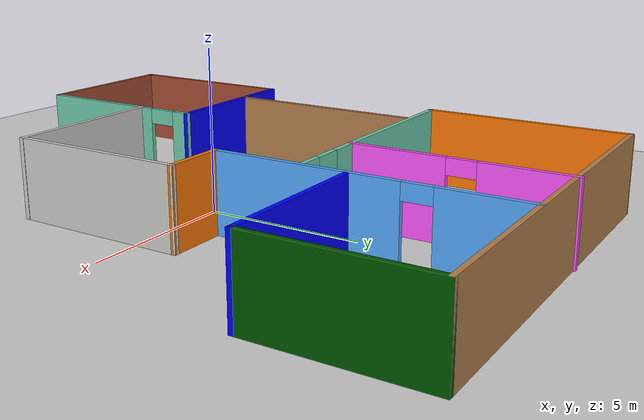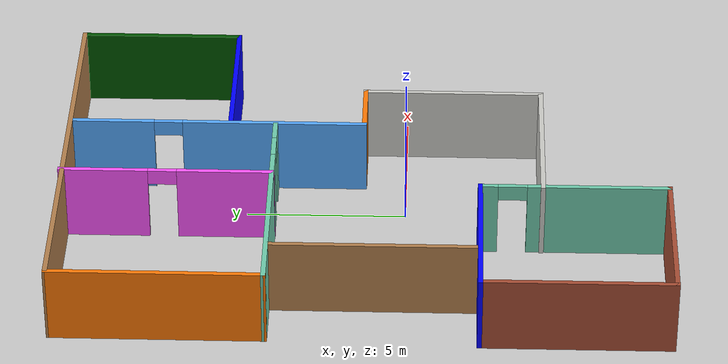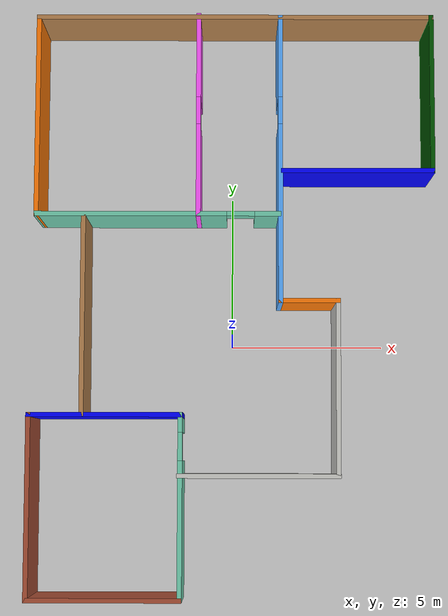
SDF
<sdf version="1.6">
 <world name="default">
  <light name="sun" type="directional">
   <pose>0 0 10 0 -0 0</pose>
   <diffuse>0.8 0.8 0.8 1</diffuse>
   <specular>0.2 0.2 0.2 1</specular>
   <attenuation>
    <range>1000</range>
    <constant>0.9</constant>
    <linear>0.01</linear>
    <quadratic>0.001</quadratic>
   </attenuation>
   <direction>-0.5 0.1 -0.9</direction>
  </light>
  <model name="ground_plane">
   <static>1</static>
   <link name="link">
    <collision name="collision">
     <geometry><plane><normal>0 0 1</normal><size>100 100</size></plane></geometry>
     <surface><friction><ode><mu>100</mu><mu2>50</mu2></ode></friction></surface>
    </collision>
    <visual name="visual">
     <cast_shadows>0</cast_shadows>
     <geometry><plane><normal>0 0 1</normal><size>100 100</size></plane></geometry>
     <material>
      <script><uri>file://media/materials/scripts/gazebo.material</uri><name>Gazebo/Grey</name></script>
     </material>
    </visual>
   </link>
  </model>
  <gravity>0 0 -9.8</gravity>
  <magnetic_field>6e-06 2.3e-05 -4.2e-05</magnetic_field>
  <atmosphere type="adiabatic"/>
  <physics name="default_physics" default="0" type="ode">
   <max_step_size>0.001</max_step_size>
   <real_time_factor>1</real_time_factor>
   <real_time_update_rate>1000</real_time_update_rate>
  </physics>
  <scene><ambient>0.4 0.4 0.4 1</ambient><background>0.7 0.7 0.7 1</background><shadows>1</shadows></scene>
  <spherical_coordinates>
   <surface_model>EARTH_WGS84</surface_model>
   <latitude_deg>0</latitude_deg>
   <longitude_deg>0</longitude_deg>
   <elevation>0</elevation>
   <heading_deg>0</heading_deg>
  </spherical_coordinates>
  <model name="new_building">
   <pose>-0.01155 1.28324 0 0 -0 0</pose>
   <link name="Wall_0">
    <collision name="Wall_0_Collision">
     <geometry><box><size>13 0.15 2.5</size></box></geometry>
     <pose>0 0 1.25 0 -0 0</pose>
    </collision>
    <visual name="Wall_0_Visual">
     <pose>0 0 1.25 0 -0 0</pose>
     <geometry><box><size>13 0.15 2.5</size></box></geometry>
     <material>
      <script><uri>file://media/materials/scripts/gazebo.material</uri><name>Gazebo/Wood</name></script>
      <ambient>1 1 1 1</ambient>
     </material>
     <meta><layer>0</layer></meta>
    </visual>
    <pose>0.081318 9.40266 0 0 -0 0</pose>
   </link>
   <link name="Wall_1">
    <collision name="Wall_1_Collision">
     <geometry><box><size>5.25 0.15 2.5</size></box></geometry>
     <pose>0 0 1.25 0 -0 0</pose>
    </collision>
    <visual name="Wall_1_Visual">
     <pose>0 0 1.25 0 -0 0</pose>
     <geometry><box><size>5.25 0.15 2.5</size></box></geometry>
     <material>
      <script><uri>file://media/materials/scripts/gazebo.material</uri><name>Gazebo/Grey</name></script>
      <ambient>0 0.333333 0 1</ambient>
     </material>
     <meta><layer>0</layer></meta>
    </visual>
    <pose>6.50632 6.85266 0 0 0 -1.5708</pose>
   </link>
   <link name="Wall_14">
    <collision name="Wall_14_Collision">
     <geometry><box><size>6 0.15 2.5</size></box></geometry>
     <pose>0 0 1.25 0 -0 0</pose>
    </collision>
    <visual name="Wall_14_Visual">
     <pose>0 0 1.25 0 -0 0</pose>
     <geometry><box><size>6 0.15 2.5</size></box></geometry>
     <material>
      <script><uri>file://media/materials/scripts/gazebo.material</uri><name>Gazebo/Bricks</name></script>
      <ambient>1 1 1 1</ambient>
     </material>
     <meta><layer>0</layer></meta>
    </visual>
    <pose>-6.50632 -6.54004 0 0 0 -1.5708</pose>
   </link>
   <link name="Wall_15">
    <collision name="Wall_15_Collision">
     <geometry><box><size>5 0.15 2.5</size></box></geometry>
     <pose>0 0 1.25 0 -0 0</pose>
    </collision>
    <visual name="Wall_15_Visual">
     <pose>0 0 1.25 0 -0 0</pose>
     <geometry><box><size>5 0.15 2.5</size></box></geometry>
     <material>
      <script><uri>file://media/materials/scripts/gazebo.material</uri><name>Gazebo/Bricks</name></script>
      <ambient>1 1 1 1</ambient>
     </material>
     <meta><layer>0</layer></meta>
    </visual>
    <pose>-4.08132 -9.46504 0 0 -0 0</pose>
   </link>
   <link name="Wall_16">
    <pose>-1.65632 -6.54004 0 0 -0 1.5708</pose>
    <visual name="Wall_16_Visual_0">
     <pose>-0.764135 0 1.25 0 -0 0</pose>
     <geometry><box><size>4.47173 0.15 2.5</size></box></geometry>
     <material>
      <script><uri>file://media/materials/scripts/gazebo.material</uri><name>Gazebo/Grey</name></script>
      <ambient>0.435294 0.796078 0.67451 1</ambient>
     </material>
     <meta><layer>0</layer></meta>
    </visual>
    <collision name="Wall_16_Collision_0">
     <geometry><box><size>4.47173 0.15 2.5</size></box></geometry>
     <pose>-0.764135 0 1.25 0 -0 0</pose>
    </collision>
    <visual name="Wall_16_Visual_1">
     <pose>2.68587 0 1.25 0 -0 0</pose>
     <geometry><box><size>0.628271 0.15 2.5</size></box></geometry>
     <material>
      <script><uri>file://media/materials/scripts/gazebo.material</uri><name>Gazebo/Grey</name></script>
      <ambient>0.435294 0.796078 0.67451 1</ambient>
     </material>
     <meta><layer>0</layer></meta>
    </visual>
    <collision name="Wall_16_Collision_1">
     <geometry><box><size>0.628271 0.15 2.5</size></box></geometry>
     <pose>2.68587 0 1.25 0 -0 0</pose>
    </collision>
    <visual name="Wall_16_Visual_2">
     <pose>1.92173 0 2.25 0 -0 0</pose>
     <geometry><box><size>0.9 0.15 0.5</size></box></geometry>
     <material>
      <script><uri>file://media/materials/scripts/gazebo.material</uri><name>Gazebo/Grey</name></script>
      <ambient>0.435294 0.796078 0.67451 1</ambient>
     </material>
     <meta><layer>0</layer></meta>
    </visual>
    <collision name="Wall_16_Collision_2">
     <geometry><box><size>0.9 0.15 0.5</size></box></geometry>
     <pose>1.92173 0 2.25 0 -0 0</pose>
    </collision>
   </link>
   <link name="Wall_18">
    <collision name="Wall_18_Collision">
     <geometry><box><size>5 0.15 2.5</size></box></geometry>
     <pose>0 0 1.25 0 -0 0</pose>
    </collision>
    <visual name="Wall_18_Visual">
     <pose>0 0 1.25 0 -0 0</pose>
     <geometry><box><size>5 0.15 2.5</size></box></geometry>
     <material>
      <script><uri>file://media/materials/scripts/gazebo.material</uri><name>Gazebo/Grey</name></script>
      <ambient>0 0 1 1</ambient>
     </material>
     <meta><layer>0</layer></meta>
    </visual>
    <pose>-4.08132 -3.61504 0 0 -0 0</pose>
   </link>
   <link name="Wall_2">
    <collision name="Wall_2_Collision">
     <geometry><box><size>5 0.15 2.5</size></box></geometry>
     <pose>0 0 1.25 0 -0 0</pose>
    </collision>
    <visual name="Wall_2_Visual">
     <pose>0 0 1.25 0 -0 0</pose>
     <geometry><box><size>5 0.15 2.5</size></box></geometry>
     <material>
      <script><uri>file://media/materials/scripts/gazebo.material</uri><name>Gazebo/Grey</name></script>
      <ambient>0 0 1 1</ambient>
     </material>
     <meta><layer>0</layer></meta>
    </visual>
    <pose>4.08132 4.30266 0 0 -0 3.14159</pose>
   </link>
   <link name="Wall_20">
    <collision name="Wall_20_Collision">
     <geometry><box><size>6.5 0.15 2.5</size></box></geometry>
     <pose>0 0 1.25 0 -0 0</pose>
    </collision>
    <visual name="Wall_20_Visual">
     <pose>0 0 1.25 0 -0 0</pose>
     <geometry><box><size>6.5 0.15 2.5</size></box></geometry>
     <material>
      <script><uri>file://media/materials/scripts/gazebo.material</uri><name>Gazebo/Wood</name></script>
      <ambient>1 1 1 1</ambient>
     </material>
     <meta><layer>0</layer></meta>
    </visual>
    <pose>-4.81839 -0.424532 0 0 -0 1.5708</pose>
   </link>
   <link name="Wall_22">
    <pose>-2.4285 2.87469 0 0 -0 0</pose>
    <visual name="Wall_22_Visual_0">
     <pose>-0.875579 0 1.25 0 -0 0</pose>
     <geometry><box><size>6.24884 0.15 2.5</size></box></geometry>
     <material>
      <script><uri>file://media/materials/scripts/gazebo.material</uri><name>Gazebo/Grey</name></script>
      <ambient>0.435294 0.796078 0.67451 1</ambient>
     </material>
     <meta><layer>0</layer></meta>
    </visual>
    <collision name="Wall_22_Collision_0">
     <geometry><box><size>6.24884 0.15 2.5</size></box></geometry>
     <pose>-0.875579 0 1.25 0 -0 0</pose>
    </collision>
    <visual name="Wall_22_Visual_1">
     <pose>3.57442 0 1.25 0 -0 0</pose>
     <geometry><box><size>0.851158 0.15 2.5</size></box></geometry>
     <material>
      <script><uri>file://media/materials/scripts/gazebo.material</uri><name>Gazebo/Grey</name></script>
      <ambient>0.435294 0.796078 0.67451 1</ambient>
     </material>
     <meta><layer>0</layer></meta>
    </visual>
    <collision name="Wall_22_Collision_1">
     <geometry><box><size>0.851158 0.15 2.5</size></box></geometry>
     <pose>3.57442 0 1.25 0 -0 0</pose>
    </collision>
    <visual name="Wall_22_Visual_2">
     <pose>2.69884 0 2.25 0 -0 0</pose>
     <geometry><box><size>0.9 0.15 0.5</size></box></geometry>
     <material>
      <script><uri>file://media/materials/scripts/gazebo.material</uri><name>Gazebo/Grey</name></script>
      <ambient>0.435294 0.796078 0.67451 1</ambient>
     </material>
     <meta><layer>0</layer></meta>
    </visual>
    <collision name="Wall_22_Collision_2">
     <geometry><box><size>0.9 0.15 0.5</size></box></geometry>
     <pose>2.69884 0 2.25 0 -0 0</pose>
    </collision>
   </link>
   <link name="Wall_24">
    <collision name="Wall_24_Collision">
     <geometry><box><size>6.67799 0.15 2.5</size></box></geometry>
     <pose>0 0 1.25 0 -0 0</pose>
    </collision>
    <visual name="Wall_24_Visual">
     <pose>0 0 1.25 0 -0 0</pose>
     <geometry><box><size>6.67799 0.15 2.5</size></box></geometry>
     <material>
      <script><uri>file://media/materials/scripts/gazebo.material</uri><name>Gazebo/Grey</name></script>
      <ambient>0.996078 0.47451 0.0196078 1</ambient>
     </material>
     <meta><layer>0</layer></meta>
    </visual>
    <pose>-6.34859 6.13868 0 0 0 -1.5723</pose>
   </link>
   <link name="Wall_26">
    <pose>-1.10877 6.16504 0 0 -0 1.5708</pose>
    <visual name="Wall_26_Visual_0">
     <pose>-1.85318 0 1.25 0 -0 0</pose>
     <geometry><box><size>3.04365 0.15 2.5</size></box></geometry>
     <material>
      <script><uri>file://media/materials/scripts/gazebo.material</uri><name>Gazebo/Grey</name></script>
      <ambient>1 0.333333 1 1</ambient>
     </material>
     <meta><layer>0</layer></meta>
    </visual>
    <collision name="Wall_26_Collision_0">
     <geometry><box><size>3.04365 0.15 2.5</size></box></geometry>
     <pose>-1.85318 0 1.25 0 -0 0</pose>
    </collision>
    <visual name="Wall_26_Visual_1">
     <pose>1.97182 0 1.25 0 -0 0</pose>
     <geometry><box><size>2.80635 0.15 2.5</size></box></geometry>
     <material>
      <script><uri>file://media/materials/scripts/gazebo.material</uri><name>Gazebo/Grey</name></script>
      <ambient>1 0.333333 1 1</ambient>
     </material>
     <meta><layer>0</layer></meta>
    </visual>
    <collision name="Wall_26_Collision_1">
     <geometry><box><size>2.80635 0.15 2.5</size></box></geometry>
     <pose>1.97182 0 1.25 0 -0 0</pose>
    </collision>
    <visual name="Wall_26_Visual_2">
     <pose>0.118651 0 2.25 0 -0 0</pose>
     <geometry><box><size>0.9 0.15 0.5</size></box></geometry>
     <material>
      <script><uri>file://media/materials/scripts/gazebo.material</uri><name>Gazebo/Grey</name></script>
      <ambient>1 0.333333 1 1</ambient>
     </material>
     <meta><layer>0</layer></meta>
    </visual>
    <collision name="Wall_26_Collision_2">
     <geometry><box><size>0.9 0.15 0.5</size></box></geometry>
     <pose>0.118651 0 2.25 0 -0 0</pose>
    </collision>
   </link>
   <link name="Wall_4">
    <pose>1.56183 4.72766 0 0 0 -1.5708</pose>
    <visual name="Wall_4_Visual_0">
     <pose>-3.37801 0 1.25 0 -0 0</pose>
     <geometry><box><size>2.74397 0.15 2.5</size></box></geometry>
     <material>
      <script><uri>file://media/materials/scripts/gazebo.material</uri><name>Gazebo/Grey</name></script>
      <ambient>0.333333 0.666667 1 1</ambient>
     </material>
     <meta><layer>0</layer></meta>
    </visual>
    <collision name="Wall_4_Collision_0">
     <geometry><box><size>2.74397 0.15 2.5</size></box></geometry>
     <pose>-3.37801 0 1.25 0 -0 0</pose>
    </collision>
    <visual name="Wall_4_Visual_1">
     <pose>1.82199 0 1.25 0 -0 0</pose>
     <geometry><box><size>5.85603 0.15 2.5</size></box></geometry>
     <material>
      <script><uri>file://media/materials/scripts/gazebo.material</uri><name>Gazebo/Grey</name></script>
      <ambient>0.333333 0.666667 1 1</ambient>
     </material>
     <meta><layer>0</layer></meta>
    </visual>
    <collision name="Wall_4_Collision_1">
     <geometry><box><size>5.85603 0.15 2.5</size></box></geometry>
     <pose>1.82199 0 1.25 0 -0 0</pose>
    </collision>
    <visual name="Wall_4_Visual_2">
     <pose>-1.55603 0 2.25 0 -0 0</pose>
     <geometry><box><size>0.9 0.15 0.5</size></box></geometry>
     <material>
      <script><uri>file://media/materials/scripts/gazebo.material</uri><name>Gazebo/Grey</name></script>
      <ambient>0.333333 0.666667 1 1</ambient>
     </material>
     <meta><layer>0</layer></meta>
    </visual>
    <collision name="Wall_4_Collision_2">
     <geometry><box><size>0.9 0.15 0.5</size></box></geometry>
     <pose>-1.55603 0 2.25 0 -0 0</pose>
    </collision>
   </link>
   <link name="Wall_5">
    <collision name="Wall_5_Collision">
     <geometry><box><size>2 0.15 2.5</size></box></geometry>
     <pose>0 0 1.25 0 -0 0</pose>
    </collision>
    <visual name="Wall_5_Visual">
     <pose>0 0 1.25 0 -0 0</pose>
     <geometry><box><size>2 0.15 2.5</size></box></geometry>
     <material>
      <script><uri>file://media/materials/scripts/gazebo.material</uri><name>Gazebo/Grey</name></script>
      <ambient>0.996078 0.47451 0.0196078 1</ambient>
     </material>
     <meta><layer>0</layer></meta>
    </visual>
    <pose>2.48683 0.052664 0 0 -0 0</pose>
   </link>
   <link name="Wall_6">
    <collision name="Wall_6_Collision">
     <geometry><box><size>5.76161 0.15 2.5</size></box></geometry>
     <pose>0 0 1.25 0 -0 0</pose>
    </collision>
    <visual name="Wall_6_Visual">
     <pose>0 0 1.25 0 -0 0</pose>
     <geometry><box><size>5.76161 0.15 2.5</size></box></geometry>
     <material>
      <script><uri>file://media/materials/scripts/gazebo.material</uri><name>Gazebo/CeilingTiled</name></script>
      <ambient>1 1 1 1</ambient>
     </material>
     <meta><layer>0</layer></meta>
    </visual>
    <pose>3.40608 -2.75309 0 0 0 -1.57285</pose>
   </link>
   <link name="Wall_7">
    <collision name="Wall_7_Collision">
     <geometry><box><size>5.25 0.15 2.5</size></box></geometry>
     <pose>0 0 1.25 0 -0 0</pose>
    </collision>
    <visual name="Wall_7_Visual">
     <pose>0 0 1.25 0 -0 0</pose>
     <geometry><box><size>5.25 0.15 2.5</size></box></geometry>
     <material>
      <script><uri>file://media/materials/scripts/gazebo.material</uri><name>Gazebo/CeilingTiled</name></script>
      <ambient>1 1 1 1</ambient>
     </material>
     <meta><layer>0</layer></meta>
    </visual>
    <pose>0.861826 -5.55884 0 0 -0 3.14159</pose>
   </link>
   <static>1</static>
  </model>
 </world>
</sdf>
